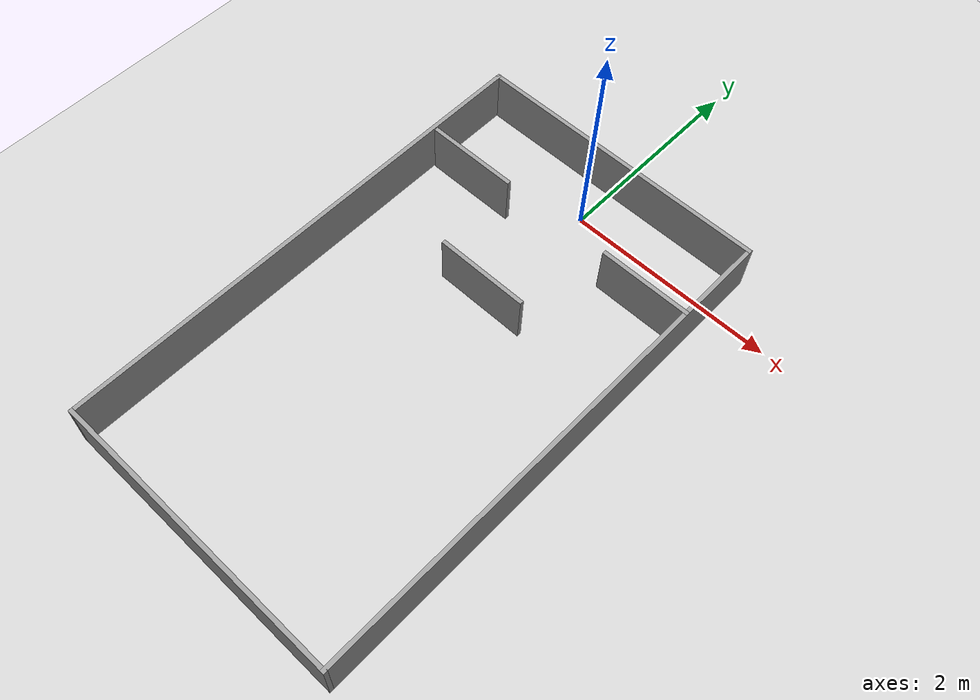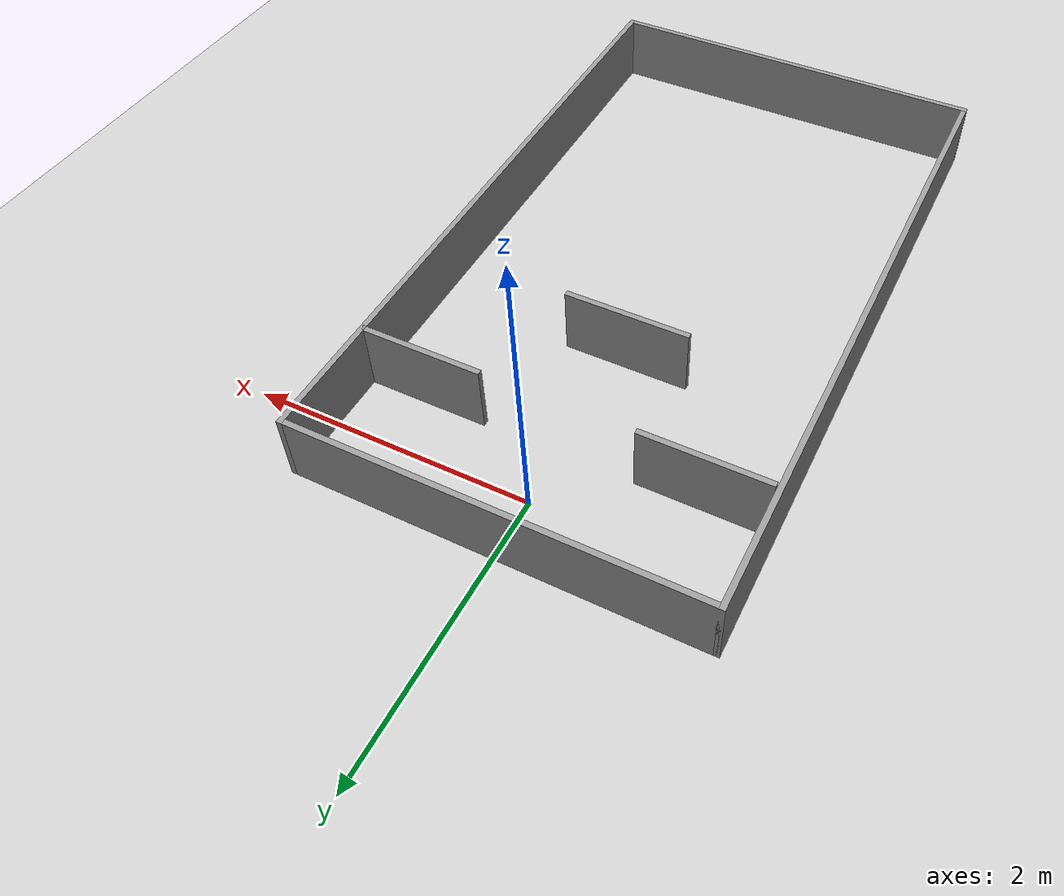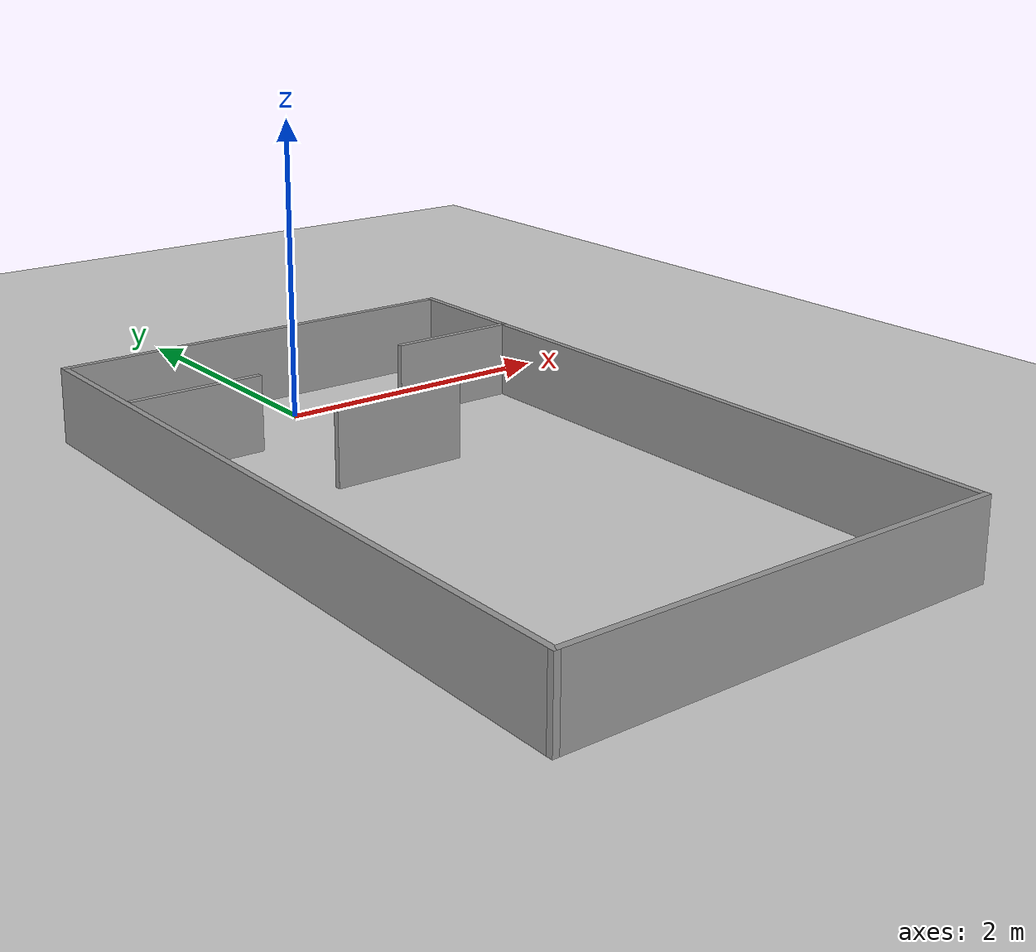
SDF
<?xml version="1.0" ?>
<sdf version="1.4">
  <!-- We use a custom world for the m_robot so that the camera angle is launched correctly -->

  <world name="default">
    <!-- Ground -->
    <include>
      <uri>model://ground_plane</uri>
    </include>

    <!-- Global light source -->
    <include>
      <uri>model://sun</uri>
    </include>

    <!-- Focus camera on tall pendulum -->
    <gui fullscreen='0'>
      <camera name='user_camera'>
        <pose>0 0 7 0 1.570796 0</pose>
        <view_controller>orbit</view_controller>
      </camera>
    </gui>

    <include>
      <uri>model://Capstone_Map</uri>
      <pose>0.0 -2.0 0.0 0.0 0.0 0.0</pose>
    </include>

  </world>
</sdf>

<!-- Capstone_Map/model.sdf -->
<sdf version='1.6'>
  <model name='Capstone_Map2'>
    <pose frame=''>-1.995 -4.26 0 0 -0 0</pose>
    <link name='Wall_0'>
      <collision name='Wall_0_Collision'>
        <geometry>
          <box>
            <size>2.89 0.04 0.5</size>
          </box>
        </geometry>
        <pose frame=''>0 0 0.25 0 -0 0</pose>
      </collision>
      <visual name='Wall_0_Visual'>
        <pose frame=''>0 0 0.25 0 -0 0</pose>
        <geometry>
          <box>
            <size>2.89 0.04 0.5</size>
          </box>
        </geometry>
        <material>
          <script>
            <uri>file://media/materials/scripts/gazebo.material</uri>
            <name>Gazebo/Grey</name>
          </script>
          <ambient>1 1 1 1</ambient>
        </material>
      </visual>
      <pose frame=''>0 2.42 0 0 -0 0</pose>
    </link>
    <link name='Wall_1'>
      <collision name='Wall_1_Collision'>
        <geometry>
          <box>
            <size>4.88 0.04 0.5</size>
          </box>
        </geometry>
        <pose frame=''>0 0 0.25 0 -0 0</pose>
      </collision>
      <visual name='Wall_1_Visual'>
        <pose frame=''>0 0 0.25 0 -0 0</pose>
        <geometry>
          <box>
            <size>4.88 0.04 0.5</size>
          </box>
        </geometry>
        <material>
          <script>
            <uri>file://media/materials/scripts/gazebo.material</uri>
            <name>Gazebo/Grey</name>
          </script>
          <ambient>1 1 1 1</ambient>
        </material>
      </visual>
      <pose frame=''>1.425 0 0 0 0 -1.5708</pose>
    </link>
    <link name='Wall_14'>
      <collision name='Wall_14_Collision'>
        <geometry>
          <box>
            <size>0.89 0.04 0.5</size>
          </box>
        </geometry>
        <pose frame=''>0 0 0.25 0 -0 0</pose>
      </collision>
      <visual name='Wall_14_Visual'>
        <pose frame=''>0 0 0.25 0 -0 0</pose>
        <geometry>
          <box>
            <size>0.89 0.04 0.5</size>
          </box>
        </geometry>
        <material>
          <script>
            <uri>file://media/materials/scripts/gazebo.material</uri>
            <name>Gazebo/Grey</name>
          </script>
          <ambient>1 1 1 1</ambient>
        </material>
      </visual>
      <pose frame=''>1 1.57 0 0 -0 3.14159</pose>
    </link>
    <link name='Wall_19'>
      <collision name='Wall_19_Collision'>
        <geometry>
          <box>
            <size>0.889804 0.04 0.5</size>
          </box>
        </geometry>
        <pose frame=''>0 0 0.25 0 -0 0</pose>
      </collision>
      <visual name='Wall_19_Visual'>
        <pose frame=''>0 0 0.25 0 -0 0</pose>
        <geometry>
          <box>
            <size>0.889804 0.04 0.5</size>
          </box>
        </geometry>
        <material>
          <script>
            <uri>file://media/materials/scripts/gazebo.material</uri>
            <name>Gazebo/Grey</name>
          </script>
          <ambient>1 1 1 1</ambient>
        </material>
      </visual>
      <pose frame=''>-0.041 0.716 0 0 -0 0</pose>
    </link>
    <link name='Wall_2'>
      <collision name='Wall_2_Collision'>
        <geometry>
          <box>
            <size>2.89 0.04 0.5</size>
          </box>
        </geometry>
        <pose frame=''>0 0 0.25 0 -0 0</pose>
      </collision>
      <visual name='Wall_2_Visual'>
        <pose frame=''>0 0 0.25 0 -0 0</pose>
        <geometry>
          <box>
            <size>2.89 0.04 0.5</size>
          </box>
        </geometry>
        <material>
          <script>
            <uri>file://media/materials/scripts/gazebo.material</uri>
            <name>Gazebo/Grey</name>
          </script>
          <ambient>1 1 1 1</ambient>
        </material>
      </visual>
      <pose frame=''>0 -2.42 0 0 -0 3.14159</pose>
    </link>
    <link name='Wall_21'>
      <collision name='Wall_21_Collision'>
        <geometry>
          <box>
            <size>0.889537 0.04 0.5</size>
          </box>
        </geometry>
        <pose frame=''>0 0 0.25 0 -0 0</pose>
      </collision>
      <visual name='Wall_21_Visual'>
        <pose frame=''>0 0 0.25 0 -0 0</pose>
        <geometry>
          <box>
            <size>0.889537 0.04 0.5</size>
          </box>
        </geometry>
        <material>
          <script>
            <uri>file://media/materials/scripts/gazebo.material</uri>
            <name>Gazebo/Grey</name>
          </script>
          <ambient>1 1 1 1</ambient>
        </material>
      </visual>
      <pose frame=''>-0.952 1.56 0 0 -0 3.14159</pose>
    </link>
    <link name='Wall_3'>
      <collision name='Wall_3_Collision'>
        <geometry>
          <box>
            <size>4.88 0.04 0.5</size>
          </box>
        </geometry>
        <pose frame=''>0 0 0.25 0 -0 0</pose>
      </collision>
      <visual name='Wall_3_Visual'>
        <pose frame=''>0 0 0.25 0 -0 0</pose>
        <geometry>
          <box>
            <size>4.88 0.04 0.5</size>
          </box>
        </geometry>
        <material>
          <script>
            <uri>file://media/materials/scripts/gazebo.material</uri>
            <name>Gazebo/Grey</name>
          </script>
          <ambient>1 1 1 1</ambient>
        </material>
      </visual>
      <pose frame=''>-1.425 0 0 0 -0 1.5708</pose>
    </link>
    <static>1</static>
  </model>
</sdf>
